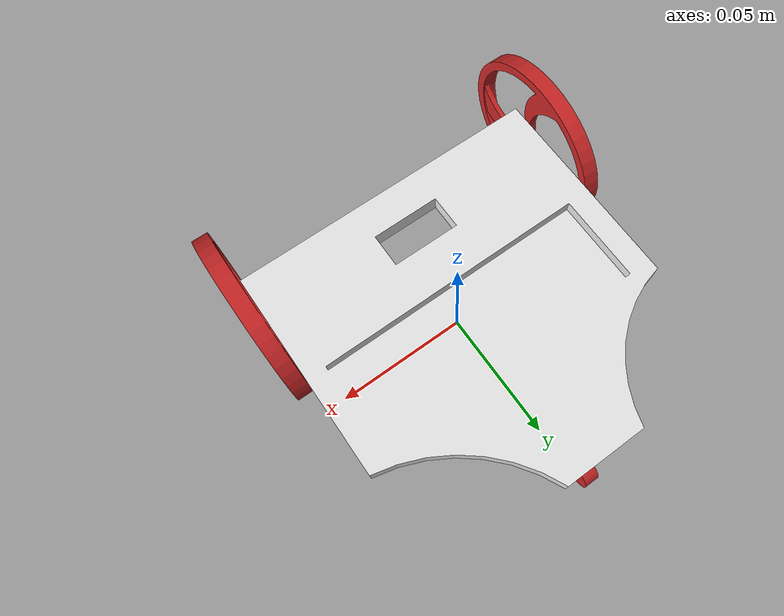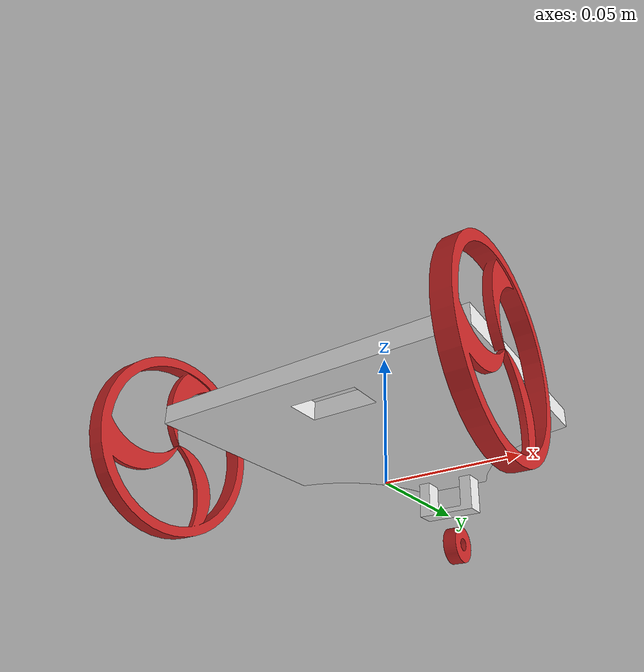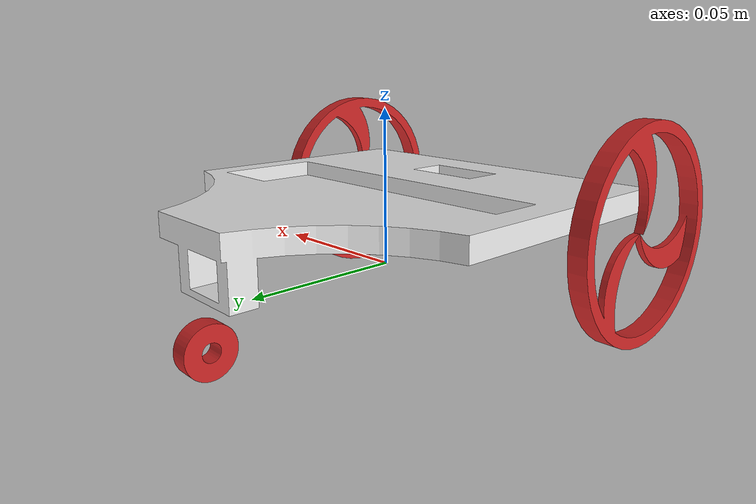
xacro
<?xml version="1.0"?>
<robot name="Jani" xmlns:xacro="http://www.ros.org/wiki/xacro">

  <xacro:include filename="$(find jani_bot)/urdf/Jani_macros.xacro" />
  <xacro:include filename="$(find jani_bot)/urdf/Jani_materials.xacro" />
  <xacro:include filename="$(find jani_bot)/urdf/gazebo.xacro" />

<!-- chassis  {}{}{} its like a simple link as we are going to have only one Chassis no more-->
<link name="odom_link"/>

<!-- ///////////////////      Wheels >> Xacro power of cleaning      ///////////////////////   -->
<!-- "origin_xyz" is for the Joint movement from origin and " origin_xyz_body " is body and joint distance created by stl model-->

<xacro:Shapes name="Chassis" position_of_joint_from_parent_rpy="0 0 0" position_of_joint_from_parent_xyz="0 0 0.025 "
              mass="5" parent="odom"  scale="0.001 0.001 0.001  " body_to_joint_xyz="0 0 0" body_to_joint_rpy="0 0 0"
              meshfile="package://jani_bot/meshes/chassis.stl" color="white"/>

<xacro:Wheel name="Left"  position_of_joint_from_parent_xyz="-0.066 -0.04 -0.01"
              color ="red" mass="2" scale="0.001 0.001 0.001  " body_to_joint_xyz= "0 0 0" body_to_joint_rpy="0 0 0"
              meshfile="package://jani_bot/meshes/tire.stl" />
<xacro:Wheel name="Right"  position_of_joint_from_parent_xyz="0.061 -0.04 -0.01"
              color ="red" mass ="2" scale="0.001 0.001 0.001  " body_to_joint_xyz= "0 0 0" body_to_joint_rpy="0 0 0"
              meshfile="package://jani_bot/meshes/tire.stl" />
<xacro:Wheel name="Caster"  position_of_joint_from_parent_xyz="-0.005 0.067 -0.033"
              color ="red" mass ="1" scale=" 0.001 0.001 0.001 " body_to_joint_xyz= "0 0 0  " body_to_joint_rpy="0 0 0"
              meshfile="package://jani_bot/meshes/front_tire.stl" />

</robot>

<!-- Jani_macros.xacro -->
<robot xmlns:xacro="http://www.ros.org/wiki/xacro">
                        <!--BOX LINKS AND JOINT-->

  <!-- wheel property -->
<xacro:property name="wheel_radius" value="0.055"/>
<xacro:property name="wheel_width" value="0.022"/>
<xacro:property name="wheel_height" value="0.11"/>
<xacro:property name="wheel_mass" value=".2"/>

<!-- AAAAAAAAAAAAAAAAAAAAAAAAAAAAAAAAAAAAAAAAAAAAA-->

  <xacro:macro name="Shapes" params="name position_of_joint_from_parent_xyz body_to_joint_xyz body_to_joint_rpy color position_of_joint_from_parent_rpy meshfile parent  mass scale  ">
    <link name="${name}_link">

         <inertial>
            <mass value="${mass}" />
            <origin xyz="0 0 0" rpy="0 0 0" />
            <inertia ixx="0.004" ixy="0.001" ixz="0" iyy="0.006" iyz="0" izz="0.007" />
    </inertial>

      <collision><origin rpy= "0 0 0" xyz= "0 0 0"/>
        <geometry>
          <mesh filename="${meshfile}"  scale ="0.001 0.001 0.001"/>
        </geometry>
      </collision>

      <visual>
      <origin rpy= "${body_to_joint_rpy}" xyz= "${body_to_joint_xyz}"/>
        <geometry>
          <mesh filename="${meshfile}" scale ="0.001 0.001 0.001" />
        </geometry>
        <material name="${color}"/>
      </visual>
    </link>

    <joint name="${name}_joint" type="fixed">
      <parent link= "${parent}_link"/>
      <child link= "${name}_link"/>
      <origin rpy="${position_of_joint_from_parent_rpy}" xyz="${position_of_joint_from_parent_xyz}"/>
    </joint>
     <gazebo reference="${name}_link">
        <turnGravityOff>false</turnGravityOff>
     </gazebo>
  </xacro:macro>

                        <!--Wheel LINKS AND JOINT-->

    <xacro:macro name="Wheel" params="name position_of_joint_from_parent_xyz  color  meshfile mass scale  body_to_joint_xyz body_to_joint_rpy ">
      <link name="${name}_wheel">

          <collision>
          <origin rpy= "${body_to_joint_rpy}" xyz= "${body_to_joint_xyz}"/>
              <geometry>
                <mesh filename="${meshfile}" scale ="0.001 0.001 0.001" />
              </geometry>
          </collision>

         <inertial>
            <mass value="${mass}" />
            <origin xyz="0 0 0" rpy="0 0 0" />
            <inertia ixx="0.004" ixy="0.001" ixz="0" iyy="0.006" iyz="0" izz="0.007" />
          </inertial>

          <visual>
          <origin rpy= "${body_to_joint_rpy}" xyz= "${body_to_joint_xyz}"/>
            <geometry>
              <mesh filename="${meshfile}" scale ="0.001 0.001 0.001" />
            </geometry>
            <material name="${color}"/>
          </visual>
      </link>
      <joint name="${name}_wheel_joint" type="continuous">
      <!-- origin is all bout orientation + position relativeto the (0,0) -->
              <origin rpy="0 0 3.14" xyz="${position_of_joint_from_parent_xyz}"/>
              <child link="${name}_wheel"/>
 <!-- axis is to defind on which axis body will rotate -> value 1 activates the corresponding axis -->
              <axis xyz="1 0 0"/>
              <parent link="Chassis_link"/>
              <limit effort="10000" velocity="1000"/>
              <joint_properties damping="1.0" friction="5.0"/>
      </joint>
    </xacro:macro>

</robot>
